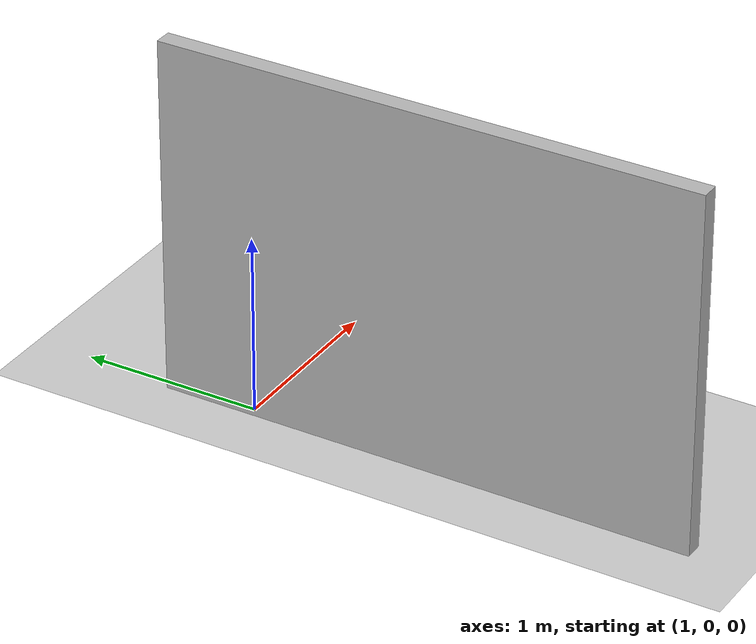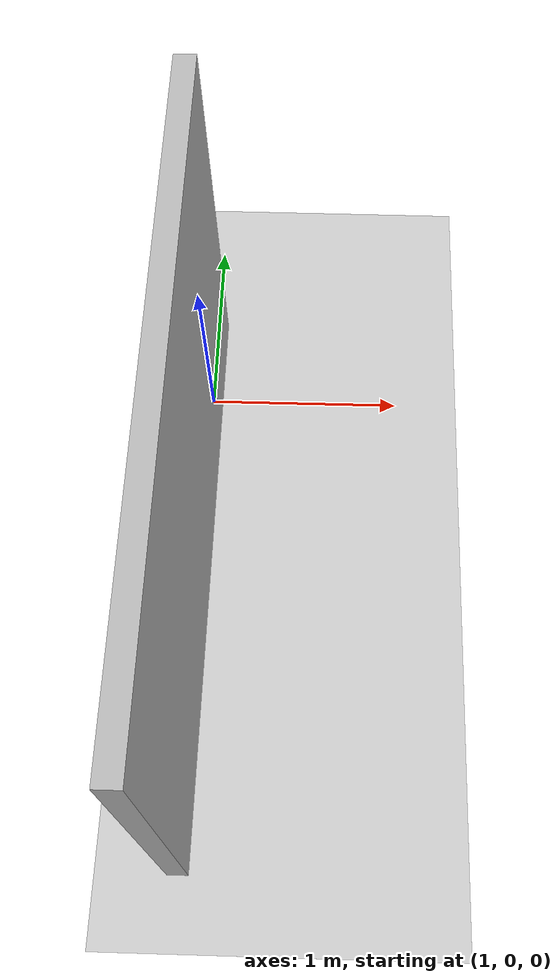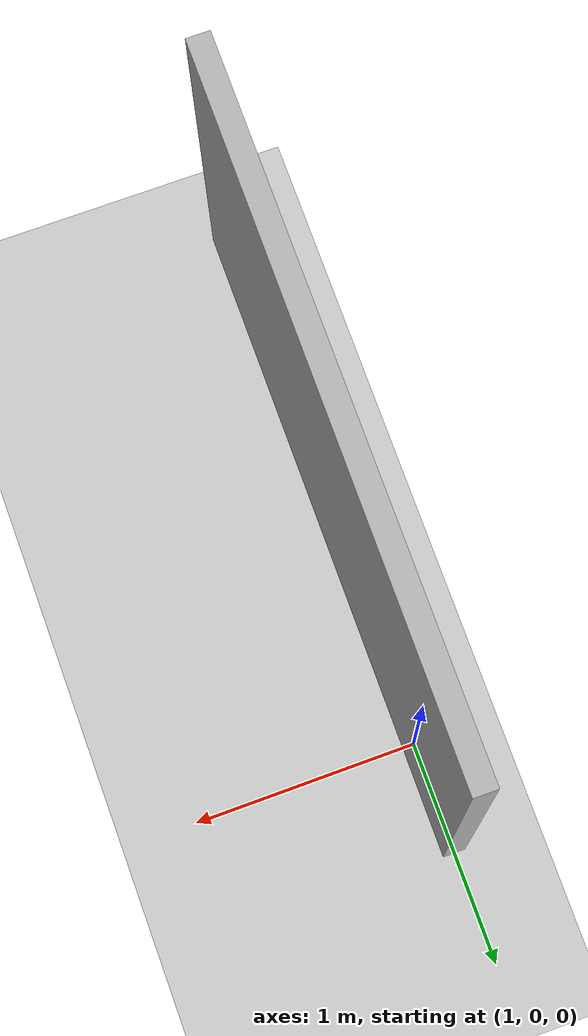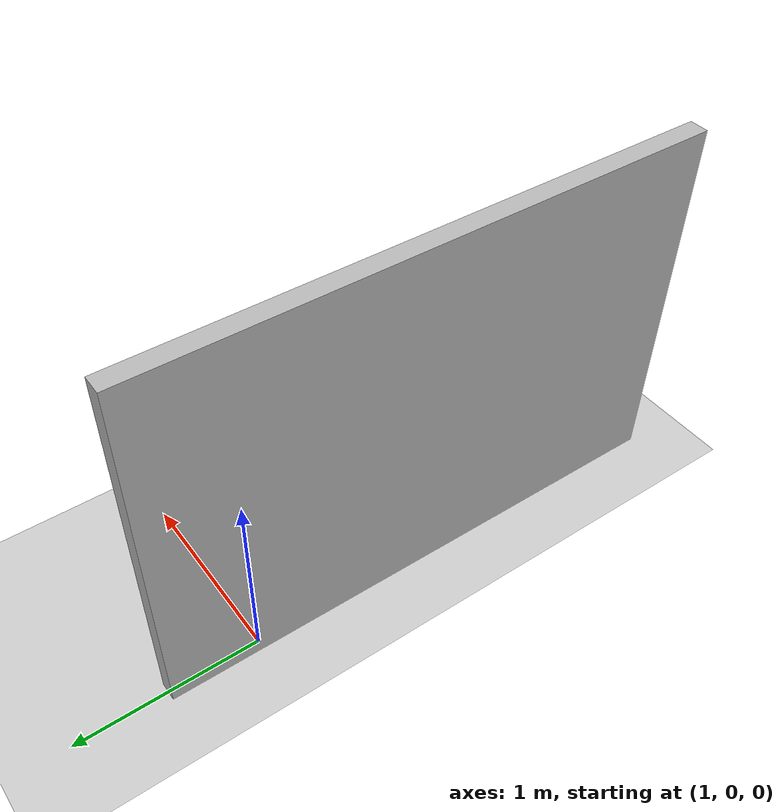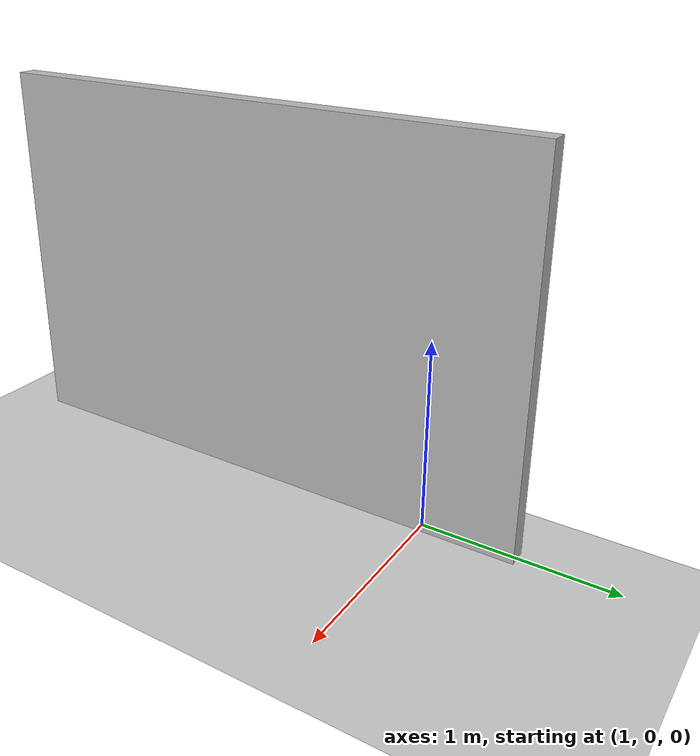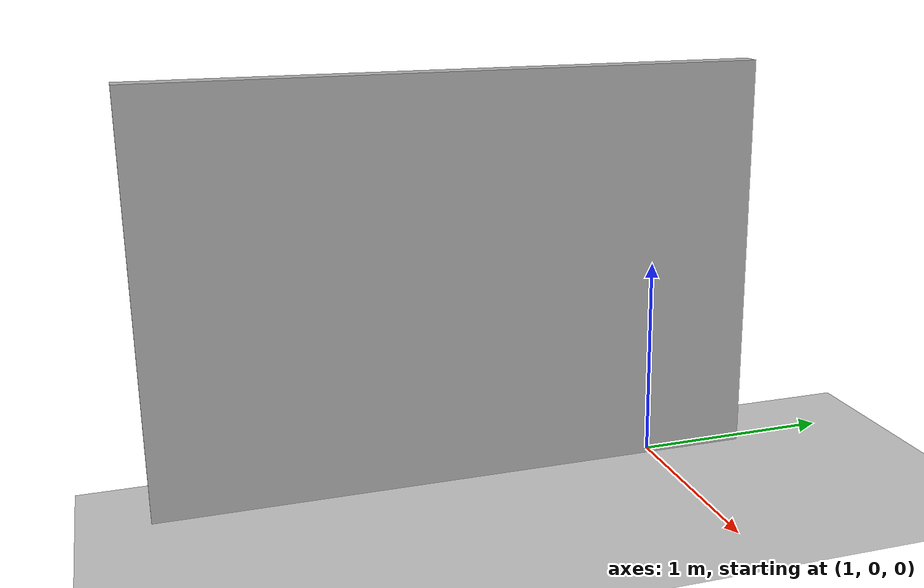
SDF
<?xml version="1.0"?>
<sdf version="1.6">
  <world name="default">
    <!-- physics engine -->
    <physics type="ode">
      <max_step_size>0.001</max_step_size>
      <real_time_factor>1</real_time_factor>
      <real_time_update_rate>1000</real_time_update_rate>
      <magnetic_field>34 0 -36</magnetic_field>
      <gravity>0 0 -9.8</gravity>
    </physics>

    <!-- coordinate -->
    <spherical_coordinates>
      <surface_model>EARTH_WGS84</surface_model>
      <latitude_deg>0</latitude_deg>
      <longitude_deg>0</longitude_deg>
      <elevation>0</elevation>
      <heading_deg>0</heading_deg>
    </spherical_coordinates>

    <!-- A global light source -->
    <scene>
      <sky>
        <clouds>
          <speed>12</speed>
        </clouds>
      </sky>
    </scene>

    <!-- ground plane -->
    <include>
      <uri>model://ground_plane</uri>
    </include>

    <!-- sun -->
    <include>
      <uri>model://sun</uri>
    </include>

    <!-- wall -->
    <include>
      <uri>model://wall_curve</uri>
      <name>wall_1</name>
      <pose>1 -1 1 0 0 1.57</pose>
    </include>

    <!-- light -->
    <light name="additional_light_x" type="directional">
      <diffuse>0.7 0.7 0.7 1</diffuse>
      <specular>0.1 0.1 0.1 1</specular>
      <direction>1.0 0 0</direction>
      <attenuation>
	<range>100</range>
	<constant>0.5</constant>
	<linear>0.01</linear>
	<quadratic>0.001</quadratic>
      </attenuation>
    </light>

  </world>
</sdf>

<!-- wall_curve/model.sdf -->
<sdf version="1.6">
<model name="wall_with_pattern">
  <static>true</static>

  <link name="link">

    <visual name="visual">
      <geometry>
        <box>
          <size>3 0.1 2</size>
        </box>
      </geometry>

      <material>
        <script>
          <uri>model://wall_curve/materials/scripts</uri>
          <uri>model://wall_curve/materials/textures</uri>
          <name>WallPattern/Stripe</name>
        </script>
      </material>

    </visual>

    <collision name="collision">
      <geometry>
        <box>
          <size>3 0.1 2</size>
        </box>
      </geometry>
    </collision>

  </link>
</model>
</sdf>
